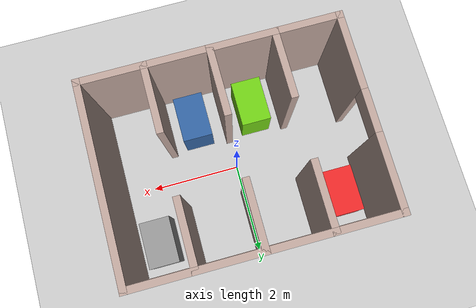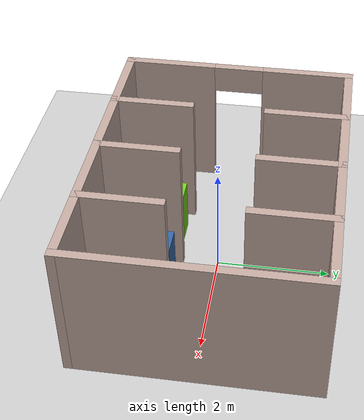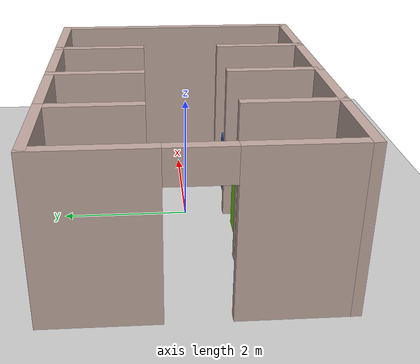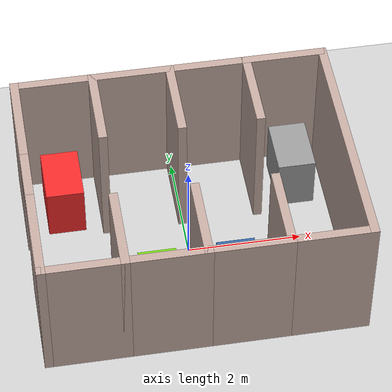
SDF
<sdf version="1.6">
 <world name="default">
  <light name="sun" type="directional">
   <pose>0 0 10 0 -0 0</pose>
   <diffuse>0.8 0.8 0.8 1</diffuse>
   <specular>0.2 0.2 0.2 1</specular>
   <attenuation>
    <range>1000</range>
    <constant>0.9</constant>
    <linear>0.01</linear>
    <quadratic>0.001</quadratic>
   </attenuation>
   <direction>-0.5 0.1 -0.9</direction>
  </light>
  <model name="ground_plane">
   <static>1</static>
   <link name="link">
    <collision name="collision">
     <geometry><plane><normal>0 0 1</normal><size>100 100</size></plane></geometry>
     <surface>
      <contact><collide_bitmask>65535</collide_bitmask></contact>
      <friction><ode><mu>100</mu><mu2>50</mu2></ode></friction>
     </surface>
    </collision>
    <visual name="visual">
     <cast_shadows>0</cast_shadows>
     <geometry><plane><normal>0 0 1</normal><size>100 100</size></plane></geometry>
     <material>
      <script><uri>file://media/materials/scripts/gazebo.material</uri><name>Gazebo/Grey</name></script>
     </material>
    </visual>
   </link>
  </model>
  <gravity>0 0 -9.8</gravity>
  <magnetic_field>6e-06 2.3e-05 -4.2e-05</magnetic_field>
  <atmosphere type="adiabatic"/>
  <physics name="default_physics" default="0" type="ode">
   <max_step_size>0.001</max_step_size>
   <real_time_factor>1</real_time_factor>
   <real_time_update_rate>1000</real_time_update_rate>
  </physics>
  <scene><ambient>0.4 0.4 0.4 1</ambient><background>0.7 0.7 0.7 1</background><shadows>1</shadows></scene>
  <spherical_coordinates>
   <surface_model>EARTH_WGS84</surface_model>
   <latitude_deg>0</latitude_deg>
   <longitude_deg>0</longitude_deg>
   <elevation>0</elevation>
   <heading_deg>0</heading_deg>
  </spherical_coordinates>
  <model name="parking">
   <link name="Wall_10">
    <collision name="Wall_10_Collision">
     <geometry><box><size>1.5 0.15 2.5</size></box></geometry>
     <pose>0 0 1.25 0 -0 0</pose>
    </collision>
    <visual name="Wall_10_Visual">
     <pose>0 0 1.25 0 -0 0</pose>
     <geometry><box><size>1.5 0.15 2.5</size></box></geometry>
     <material>
      <script><uri>file://media/materials/scripts/gazebo.material</uri><name>Gazebo/Grey</name></script>
      <ambient>0.760784 0.662745 0.627451 1</ambient>
     </material>
     <meta><layer>0</layer></meta>
    </visual>
    <pose>-1.35 1.375 0 0 -0 -1.5708</pose>
   </link>
   <link name="Wall_12">
    <collision name="Wall_12_Collision">
     <geometry><box><size>1.5 0.15 2.5</size></box></geometry>
     <pose>0 0 1.25 0 -0 0</pose>
    </collision>
    <visual name="Wall_12_Visual">
     <pose>0 0 1.25 0 -0 0</pose>
     <geometry><box><size>1.5 0.15 2.5</size></box></geometry>
     <material>
      <script><uri>file://media/materials/scripts/gazebo.material</uri><name>Gazebo/Grey</name></script>
      <ambient>0.760784 0.662745 0.627451 1</ambient>
     </material>
     <meta><layer>0</layer></meta>
    </visual>
    <pose>-0.675 2.05 0 0 -0 0</pose>
   </link>
   <link name="Wall_13">
    <collision name="Wall_13_Collision">
     <geometry><box><size>1.5 0.15 2.5</size></box></geometry>
     <pose>0 0 1.25 0 -0 0</pose>
    </collision>
    <visual name="Wall_13_Visual">
     <pose>0 0 1.25 0 -0 0</pose>
     <geometry><box><size>1.5 0.15 2.5</size></box></geometry>
     <material>
      <script><uri>file://media/materials/scripts/gazebo.material</uri><name>Gazebo/Grey</name></script>
      <ambient>0.760784 0.662745 0.627451 1</ambient>
     </material>
     <meta><layer>0</layer></meta>
    </visual>
    <pose>0 1.375 0 0 -0 -1.5708</pose>
   </link>
   <link name="Wall_15">
    <collision name="Wall_15_Collision">
     <geometry><box><size>1.5 0.15 2.5</size></box></geometry>
     <pose>0 0 1.25 0 -0 0</pose>
    </collision>
    <visual name="Wall_15_Visual">
     <pose>0 0 1.25 0 -0 0</pose>
     <geometry><box><size>1.5 0.15 2.5</size></box></geometry>
     <material>
      <script><uri>file://media/materials/scripts/gazebo.material</uri><name>Gazebo/Grey</name></script>
      <ambient>0.760784 0.662745 0.627451 1</ambient>
     </material>
     <meta><layer>0</layer></meta>
    </visual>
    <pose>0.675 2.05 0 0 -0 0</pose>
   </link>
   <link name="Wall_16">
    <collision name="Wall_16_Collision">
     <geometry><box><size>1.5 0.15 2.5</size></box></geometry>
     <pose>0 0 1.25 0 -0 0</pose>
    </collision>
    <visual name="Wall_16_Visual">
     <pose>0 0 1.25 0 -0 0</pose>
     <geometry><box><size>1.5 0.15 2.5</size></box></geometry>
     <material>
      <script><uri>file://media/materials/scripts/gazebo.material</uri><name>Gazebo/Grey</name></script>
      <ambient>0.760784 0.662745 0.627451 1</ambient>
     </material>
     <meta><layer>0</layer></meta>
    </visual>
    <pose>1.35 1.375 0 0 -0 -1.5708</pose>
   </link>
   <link name="Wall_18">
    <collision name="Wall_18_Collision">
     <geometry><box><size>1.5 0.15 2.5</size></box></geometry>
     <pose>0 0 1.25 0 -0 0</pose>
    </collision>
    <visual name="Wall_18_Visual">
     <pose>0 0 1.25 0 -0 0</pose>
     <geometry><box><size>1.5 0.15 2.5</size></box></geometry>
     <material>
      <script><uri>file://media/materials/scripts/gazebo.material</uri><name>Gazebo/Grey</name></script>
      <ambient>0.760784 0.662745 0.627451 1</ambient>
     </material>
     <meta><layer>0</layer></meta>
    </visual>
    <pose>2.025 2.05 0 0 -0 0</pose>
   </link>
   <link name="Wall_19">
    <collision name="Wall_19_Collision">
     <geometry><box><size>4.25 0.15 2.5</size></box></geometry>
     <pose>0 0 1.25 0 -0 0</pose>
    </collision>
    <visual name="Wall_19_Visual">
     <pose>0 0 1.25 0 -0 0</pose>
     <geometry><box><size>4.25 0.15 2.5</size></box></geometry>
     <material>
      <script><uri>file://media/materials/scripts/gazebo.material</uri><name>Gazebo/Grey</name></script>
      <ambient>0.760784 0.662745 0.627451 1</ambient>
     </material>
     <meta><layer>0</layer></meta>
    </visual>
    <pose>2.7 0 0 0 -0 -1.5708</pose>
   </link>
   <link name="Wall_2">
    <pose>-2.7 0 0 0 -0 1.5708</pose>
    <visual name="Wall_2_Visual_0">
     <pose>-1.2825 0 1.25 0 -0 0</pose>
     <geometry><box><size>1.685 0.15 2.5</size></box></geometry>
     <material>
      <script><uri>file://media/materials/scripts/gazebo.material</uri><name>Gazebo/Grey</name></script>
      <ambient>0.760784 0.662745 0.627451 1</ambient>
     </material>
     <meta><layer>0</layer></meta>
    </visual>
    <collision name="Wall_2_Collision_0">
     <geometry><box><size>1.685 0.15 2.5</size></box></geometry>
     <pose>-1.2825 0 1.25 0 -0 0</pose>
    </collision>
    <visual name="Wall_2_Visual_1">
     <pose>1.2925 0 1.25 0 -0 0</pose>
     <geometry><box><size>1.665 0.15 2.5</size></box></geometry>
     <material>
      <script><uri>file://media/materials/scripts/gazebo.material</uri><name>Gazebo/Grey</name></script>
      <ambient>0.760784 0.662745 0.627451 1</ambient>
     </material>
     <meta><layer>0</layer></meta>
    </visual>
    <collision name="Wall_2_Collision_1">
     <geometry><box><size>1.665 0.15 2.5</size></box></geometry>
     <pose>1.2925 0 1.25 0 -0 0</pose>
    </collision>
    <visual name="Wall_2_Visual_2">
     <pose>0.01 0 2.25 0 -0 0</pose>
     <geometry><box><size>0.9 0.15 0.5</size></box></geometry>
     <material>
      <script><uri>file://media/materials/scripts/gazebo.material</uri><name>Gazebo/Grey</name></script>
      <ambient>0.760784 0.662745 0.627451 1</ambient>
     </material>
     <meta><layer>0</layer></meta>
    </visual>
    <collision name="Wall_2_Collision_2">
     <geometry><box><size>0.9 0.15 0.5</size></box></geometry>
     <pose>0.01 0 2.25 0 -0 0</pose>
    </collision>
   </link>
   <link name="Wall_21">
    <collision name="Wall_21_Collision">
     <geometry><box><size>1.5 0.15 2.5</size></box></geometry>
     <pose>0 0 1.25 0 -0 0</pose>
    </collision>
    <visual name="Wall_21_Visual">
     <pose>0 0 1.25 0 -0 0</pose>
     <geometry><box><size>1.5 0.15 2.5</size></box></geometry>
     <material>
      <script><uri>file://media/materials/scripts/gazebo.material</uri><name>Gazebo/Grey</name></script>
      <ambient>0.760784 0.662745 0.627451 1</ambient>
     </material>
     <meta><layer>0</layer></meta>
    </visual>
    <pose>2.025 -2.05 0 0 -0 3.14159</pose>
   </link>
   <link name="Wall_22">
    <collision name="Wall_22_Collision">
     <geometry><box><size>1.5 0.15 2.5</size></box></geometry>
     <pose>0 0 1.25 0 -0 0</pose>
    </collision>
    <visual name="Wall_22_Visual">
     <pose>0 0 1.25 0 -0 0</pose>
     <geometry><box><size>1.5 0.15 2.5</size></box></geometry>
     <material>
      <script><uri>file://media/materials/scripts/gazebo.material</uri><name>Gazebo/Grey</name></script>
      <ambient>0.760784 0.662745 0.627451 1</ambient>
     </material>
     <meta><layer>0</layer></meta>
    </visual>
    <pose>1.35 -1.375 0 0 -0 1.5708</pose>
   </link>
   <link name="Wall_24">
    <collision name="Wall_24_Collision">
     <geometry><box><size>1.5 0.15 2.5</size></box></geometry>
     <pose>0 0 1.25 0 -0 0</pose>
    </collision>
    <visual name="Wall_24_Visual">
     <pose>0 0 1.25 0 -0 0</pose>
     <geometry><box><size>1.5 0.15 2.5</size></box></geometry>
     <material>
      <script><uri>file://media/materials/scripts/gazebo.material</uri><name>Gazebo/Grey</name></script>
      <ambient>0.760784 0.662745 0.627451 1</ambient>
     </material>
     <meta><layer>0</layer></meta>
    </visual>
    <pose>0.675 -2.05 0 0 -0 3.14159</pose>
   </link>
   <link name="Wall_25">
    <collision name="Wall_25_Collision">
     <geometry><box><size>1.5 0.15 2.5</size></box></geometry>
     <pose>0 0 1.25 0 -0 0</pose>
    </collision>
    <visual name="Wall_25_Visual">
     <pose>0 0 1.25 0 -0 0</pose>
     <geometry><box><size>1.5 0.15 2.5</size></box></geometry>
     <material>
      <script><uri>file://media/materials/scripts/gazebo.material</uri><name>Gazebo/Grey</name></script>
      <ambient>0.760784 0.662745 0.627451 1</ambient>
     </material>
     <meta><layer>0</layer></meta>
    </visual>
    <pose>0 -1.375 0 0 -0 1.5708</pose>
   </link>
   <link name="Wall_27">
    <collision name="Wall_27_Collision">
     <geometry><box><size>1.5 0.15 2.5</size></box></geometry>
     <pose>0 0 1.25 0 -0 0</pose>
    </collision>
    <visual name="Wall_27_Visual">
     <pose>0 0 1.25 0 -0 0</pose>
     <geometry><box><size>1.5 0.15 2.5</size></box></geometry>
     <material>
      <script><uri>file://media/materials/scripts/gazebo.material</uri><name>Gazebo/Grey</name></script>
      <ambient>0.760784 0.662745 0.627451 1</ambient>
     </material>
     <meta><layer>0</layer></meta>
    </visual>
    <pose>-0.675 -2.05 0 0 -0 3.14159</pose>
   </link>
   <link name="Wall_28">
    <collision name="Wall_28_Collision">
     <geometry><box><size>1.5 0.15 2.5</size></box></geometry>
     <pose>0 0 1.25 0 -0 0</pose>
    </collision>
    <visual name="Wall_28_Visual">
     <pose>0 0 1.25 0 -0 0</pose>
     <geometry><box><size>1.5 0.15 2.5</size></box></geometry>
     <material>
      <script><uri>file://media/materials/scripts/gazebo.material</uri><name>Gazebo/Grey</name></script>
      <ambient>0.760784 0.662745 0.627451 1</ambient>
     </material>
     <meta><layer>0</layer></meta>
    </visual>
    <pose>-1.35 -1.375 0 0 -0 1.5708</pose>
   </link>
   <link name="Wall_30">
    <collision name="Wall_30_Collision">
     <geometry><box><size>1.5 0.15 2.5</size></box></geometry>
     <pose>0 0 1.25 0 -0 0</pose>
    </collision>
    <visual name="Wall_30_Visual">
     <pose>0 0 1.25 0 -0 0</pose>
     <geometry><box><size>1.5 0.15 2.5</size></box></geometry>
     <material>
      <script><uri>file://media/materials/scripts/gazebo.material</uri><name>Gazebo/Grey</name></script>
      <ambient>0.760784 0.662745 0.627451 1</ambient>
     </material>
     <meta><layer>0</layer></meta>
    </visual>
    <pose>-2.025 -2.05 0 0 -0 3.14159</pose>
   </link>
   <link name="Wall_9">
    <collision name="Wall_9_Collision">
     <geometry><box><size>1.5 0.15 2.5</size></box></geometry>
     <pose>0 0 1.25 0 -0 0</pose>
    </collision>
    <visual name="Wall_9_Visual">
     <pose>0 0 1.25 0 -0 0</pose>
     <geometry><box><size>1.5 0.15 2.5</size></box></geometry>
     <material>
      <script><uri>file://media/materials/scripts/gazebo.material</uri><name>Gazebo/Grey</name></script>
      <ambient>0.760784 0.662745 0.627451 1</ambient>
     </material>
     <meta><layer>0</layer></meta>
    </visual>
    <pose>-2.025 2.05 0 0 -0 0</pose>
   </link>
   <static>1</static>
  </model>
  <model name="red_car">
   <link name="link_0">
    <inertial>
     <mass>0.659578</mass>
     <inertia>
      <ixx>0.10993</ixx>
      <ixy>0</ixy>
      <ixz>0</ixz>
      <iyy>0.0788771</iyy>
      <iyz>0</iyz>
      <izz>0.0788771</izz>
     </inertia>
    </inertial>
    <pose>-2.04401 1.25876 0.5 0 -0 0</pose>
    <visual name="visual">
     <geometry><box><size>0.65958 1 1</size></box></geometry>
     <material>
      <lighting>1</lighting>
      <script><uri>file://media/materials/scripts/gazebo.material</uri><name>Gazebo/Grey</name></script>
      <shader type="pixel"><normal_map>__default__</normal_map></shader>
      <ambient>0.937 0.161 0.161 1</ambient>
      <diffuse>0.7 0.7 0.7 1</diffuse>
      <specular>0.01 0.01 0.01 1</specular>
      <emissive>0 0 0 1</emissive>
     </material>
    </visual>
    <collision name="collision">
     <geometry><box><size>0.65958 1 1</size></box></geometry>
     <surface>
      <friction>
       <ode><mu>1</mu><mu2>1</mu2><fdir1>0 0 0</fdir1><slip1>0</slip1><slip2>0</slip2></ode>
       <torsional>
        <coefficient>1</coefficient>
        <patch_radius>0</patch_radius>
        <surface_radius>0</surface_radius>
        <use_patch_radius>1</use_patch_radius>
        <ode><slip>0</slip></ode>
       </torsional>
      </friction>
      <bounce><restitution_coefficient>0</restitution_coefficient><threshold>1e+06</threshold></bounce>
      <contact>
       <collide_without_contact>0</collide_without_contact>
       <collide_without_contact_bitmask>1</collide_without_contact_bitmask>
       <collide_bitmask>1</collide_bitmask>
       <ode>
        <soft_cfm>0</soft_cfm>
        <soft_erp>0.2</soft_erp>
        <kp>1e+13</kp>
        <kd>1</kd>
        <max_vel>0.01</max_vel>
        <min_depth>0</min_depth>
       </ode>
       <bullet>
        <split_impulse>1</split_impulse>
        <split_impulse_penetration_threshold>-0.01</split_impulse_penetration_threshold>
        <soft_cfm>0</soft_cfm>
        <soft_erp>0.2</soft_erp>
        <kp>1e+13</kp>
        <kd>1</kd>
       </bullet>
      </contact>
     </surface>
    </collision>
   </link>
   <static>0</static>
   <pose>-4e-06 -3e-06 0 0 -0 0</pose>
  </model>
  <model name="blue_car">
   <link name="link_0">
    <inertial>
     <mass>0.659578</mass>
     <inertia>
      <ixx>0.10993</ixx>
      <ixy>0</ixy>
      <ixz>0</ixz>
      <iyy>0.0788771</iyy>
      <iyz>0</iyz>
      <izz>0.0788771</izz>
     </inertia>
    </inertial>
    <pose>-2.04401 1.25876 0.5 0 -0 0</pose>
    <visual name="visual">
     <geometry><box><size>0.65958 1 1</size></box></geometry>
     <material>
      <lighting>1</lighting>
      <script><uri>file://media/materials/scripts/gazebo.material</uri><name>Gazebo/Grey</name></script>
      <shader type="pixel"><normal_map>__default__</normal_map></shader>
      <ambient>0.204 0.396 0.643 1</ambient>
      <diffuse>0.7 0.7 0.7 1</diffuse>
      <specular>0.01 0.01 0.01 1</specular>
      <emissive>0 0 0 1</emissive>
     </material>
    </visual>
    <collision name="collision">
     <geometry><box><size>0.65958 1 1</size></box></geometry>
     <surface>
      <friction>
       <ode><mu>1</mu><mu2>1</mu2><fdir1>0 0 0</fdir1><slip1>0</slip1><slip2>0</slip2></ode>
       <torsional>
        <coefficient>1</coefficient>
        <patch_radius>0</patch_radius>
        <surface_radius>0</surface_radius>
        <use_patch_radius>1</use_patch_radius>
        <ode><slip>0</slip></ode>
       </torsional>
      </friction>
      <bounce><restitution_coefficient>0</restitution_coefficient><threshold>1e+06</threshold></bounce>
      <contact>
       <collide_without_contact>0</collide_without_contact>
       <collide_without_contact_bitmask>1</collide_without_contact_bitmask>
       <collide_bitmask>1</collide_bitmask>
       <ode>
        <soft_cfm>0</soft_cfm>
        <soft_erp>0.2</soft_erp>
        <kp>1e+13</kp>
        <kd>1</kd>
        <max_vel>0.01</max_vel>
        <min_depth>0</min_depth>
       </ode>
       <bullet>
        <split_impulse>1</split_impulse>
        <split_impulse_penetration_threshold>-0.01</split_impulse_penetration_threshold>
        <soft_cfm>0</soft_cfm>
        <soft_erp>0.2</soft_erp>
        <kp>1e+13</kp>
        <kd>1</kd>
       </bullet>
      </contact>
     </surface>
    </collision>
   </link>
   <static>0</static>
   <pose>2.73858 -2.46908 0 0 -0 0</pose>
  </model>
  <model name="green_car">
   <link name="link_0">
    <inertial>
     <mass>0.659578</mass>
     <inertia>
      <ixx>0.10993</ixx>
      <ixy>0</ixy>
      <ixz>0</ixz>
      <iyy>0.0788771</iyy>
      <iyz>0</iyz>
      <izz>0.0788771</izz>
     </inertia>
    </inertial>
    <pose>-2.04401 1.25876 0.5 0 -0 0</pose>
    <visual name="visual">
     <geometry><box><size>0.65958 1 1</size></box></geometry>
     <material>
      <lighting>1</lighting>
      <script><uri>file://media/materials/scripts/gazebo.material</uri><name>Gazebo/Grey</name></script>
      <shader type="pixel"><normal_map>__default__</normal_map></shader>
      <ambient>0.451 0.824 0.086 1</ambient>
      <diffuse>0.7 0.7 0.7 1</diffuse>
      <specular>0.01 0.01 0.01 1</specular>
      <emissive>0 0 0 1</emissive>
     </material>
    </visual>
    <collision name="collision">
     <geometry><box><size>0.65958 1 1</size></box></geometry>
     <surface>
      <friction>
       <ode><mu>1</mu><mu2>1</mu2><fdir1>0 0 0</fdir1><slip1>0</slip1><slip2>0</slip2></ode>
       <torsional>
        <coefficient>1</coefficient>
        <patch_radius>0</patch_radius>
        <surface_radius>0</surface_radius>
        <use_patch_radius>1</use_patch_radius>
        <ode><slip>0</slip></ode>
       </torsional>
      </friction>
      <bounce><restitution_coefficient>0</restitution_coefficient><threshold>1e+06</threshold></bounce>
      <contact>
       <collide_without_contact>0</collide_without_contact>
       <collide_without_contact_bitmask>1</collide_without_contact_bitmask>
       <collide_bitmask>1</collide_bitmask>
       <ode>
        <soft_cfm>0</soft_cfm>
        <soft_erp>0.2</soft_erp>
        <kp>1e+13</kp>
        <kd>1</kd>
        <max_vel>0.01</max_vel>
        <min_depth>0</min_depth>
       </ode>
       <bullet>
        <split_impulse>1</split_impulse>
        <split_impulse_penetration_threshold>-0.01</split_impulse_penetration_threshold>
        <soft_cfm>0</soft_cfm>
        <soft_erp>0.2</soft_erp>
        <kp>1e+13</kp>
        <kd>1</kd>
       </bullet>
      </contact>
     </surface>
    </collision>
   </link>
   <static>0</static>
   <pose>1.38228 -2.47836 0 0 -0 0</pose>
  </model>
  <model name="black_car">
   <link name="link_0">
    <inertial>
     <mass>0.659578</mass>
     <inertia>
      <ixx>0.10993</ixx>
      <ixy>0</ixy>
      <ixz>0</ixz>
      <iyy>0.0788771</iyy>
      <iyz>0</iyz>
      <izz>0.0788771</izz>
     </inertia>
    </inertial>
    <pose>-2.04401 1.25876 0.5 0 -0 0</pose>
    <visual name="visual">
     <geometry><box><size>0.65958 1 1</size></box></geometry>
     <material>
      <lighting>1</lighting>
      <script><uri>file://media/materials/scripts/gazebo.material</uri><name>Gazebo/Grey</name></script>
      <shader type="pixel"><normal_map>__default__</normal_map></shader>
      <ambient>0 0 0 1</ambient>
      <diffuse>0.7 0.7 0.7 1</diffuse>
      <specular>0.01 0.01 0.01 1</specular>
      <emissive>0 0 0 1</emissive>
     </material>
    </visual>
    <collision name="collision">
     <geometry><box><size>0.65958 1 1</size></box></geometry>
     <surface>
      <friction>
       <ode><mu>1</mu><mu2>1</mu2><fdir1>0 0 0</fdir1><slip1>0</slip1><slip2>0</slip2></ode>
       <torsional>
        <coefficient>1</coefficient>
        <patch_radius>0</patch_radius>
        <surface_radius>0</surface_radius>
        <use_patch_radius>1</use_patch_radius>
        <ode><slip>0</slip></ode>
       </torsional>
      </friction>
      <bounce><restitution_coefficient>0</restitution_coefficient><threshold>1e+06</threshold></bounce>
      <contact>
       <collide_without_contact>0</collide_without_contact>
       <collide_without_contact_bitmask>1</collide_without_contact_bitmask>
       <collide_bitmask>1</collide_bitmask>
       <ode>
        <soft_cfm>0</soft_cfm>
        <soft_erp>0.2</soft_erp>
        <kp>1e+13</kp>
        <kd>1</kd>
        <max_vel>0.01</max_vel>
        <min_depth>0</min_depth>
       </ode>
       <bullet>
        <split_impulse>1</split_impulse>
        <split_impulse_penetration_threshold>-0.01</split_impulse_penetration_threshold>
        <soft_cfm>0</soft_cfm>
        <soft_erp>0.2</soft_erp>
        <kp>1e+13</kp>
        <kd>1</kd>
       </bullet>
      </contact>
     </surface>
    </collision>
   </link>
   <static>0</static>
   <pose>4.11524 0.031383 0 0 -0 0</pose>
  </model>
 </world>
</sdf>
